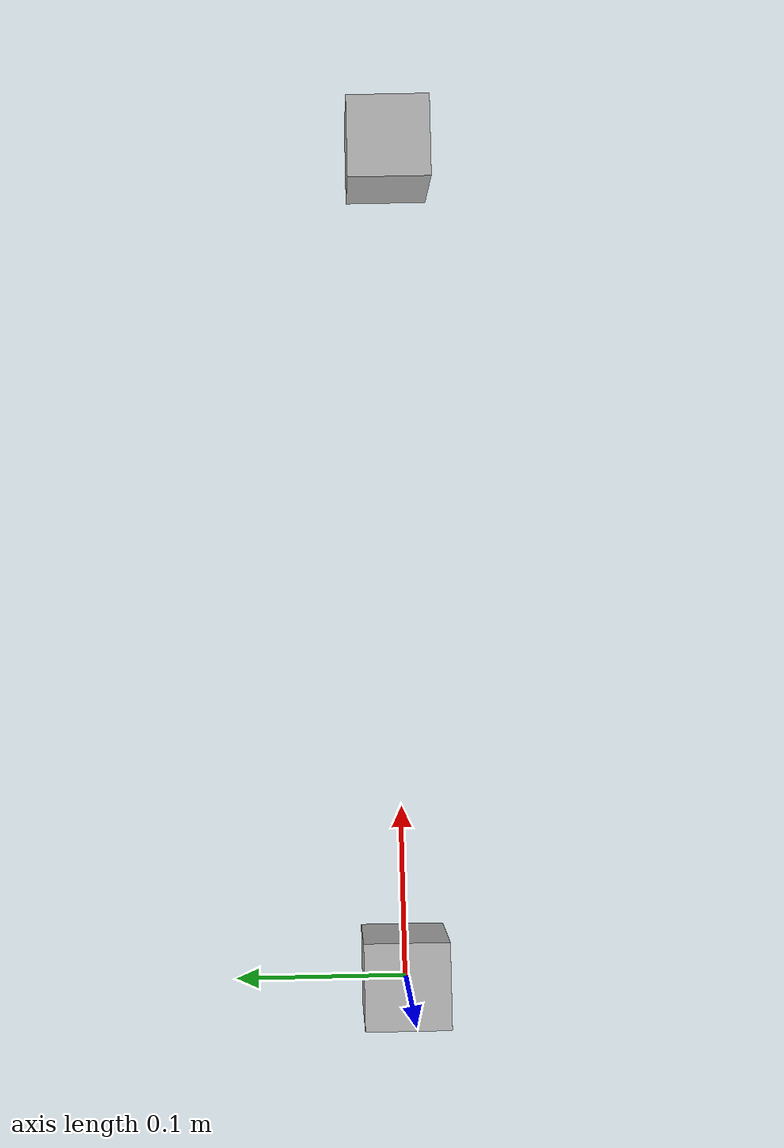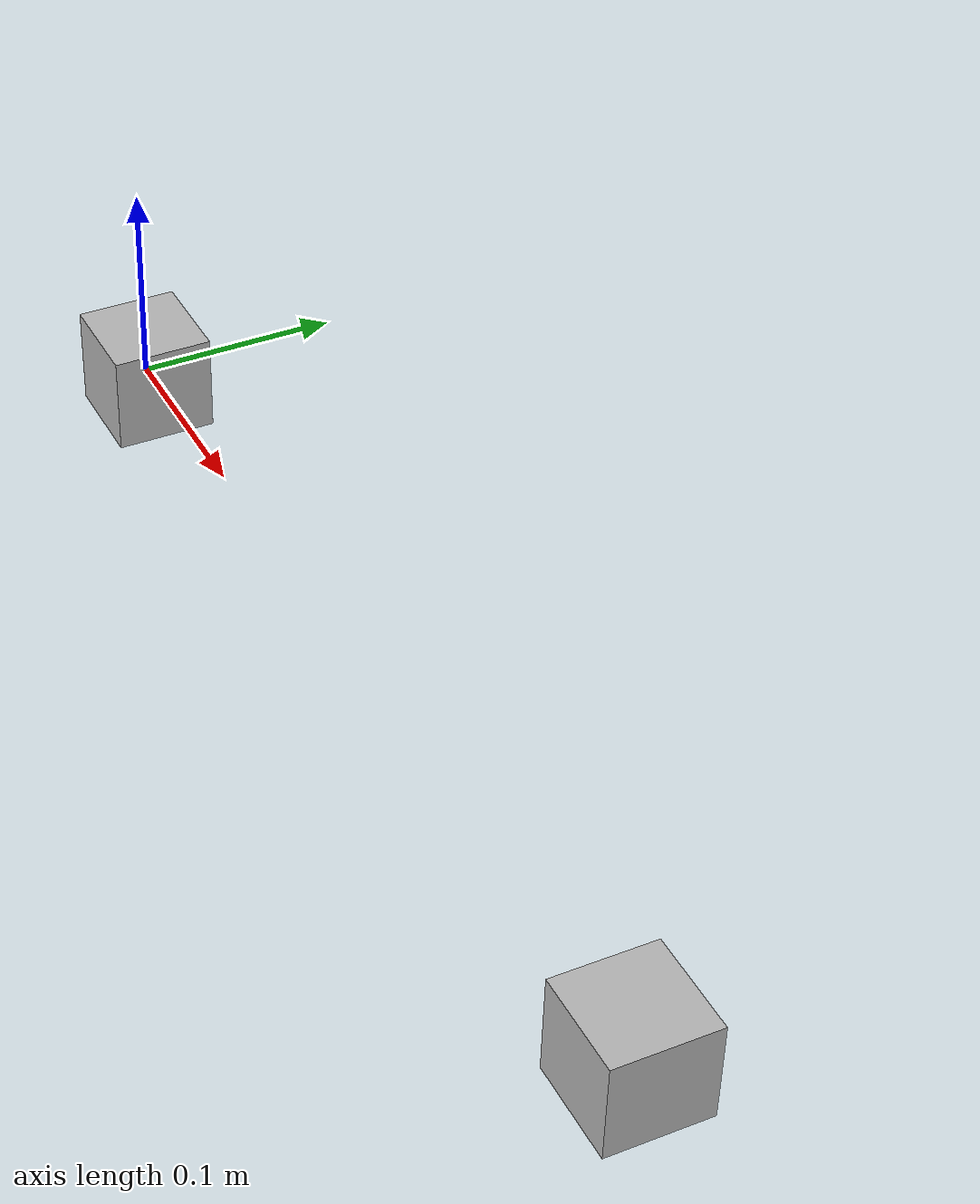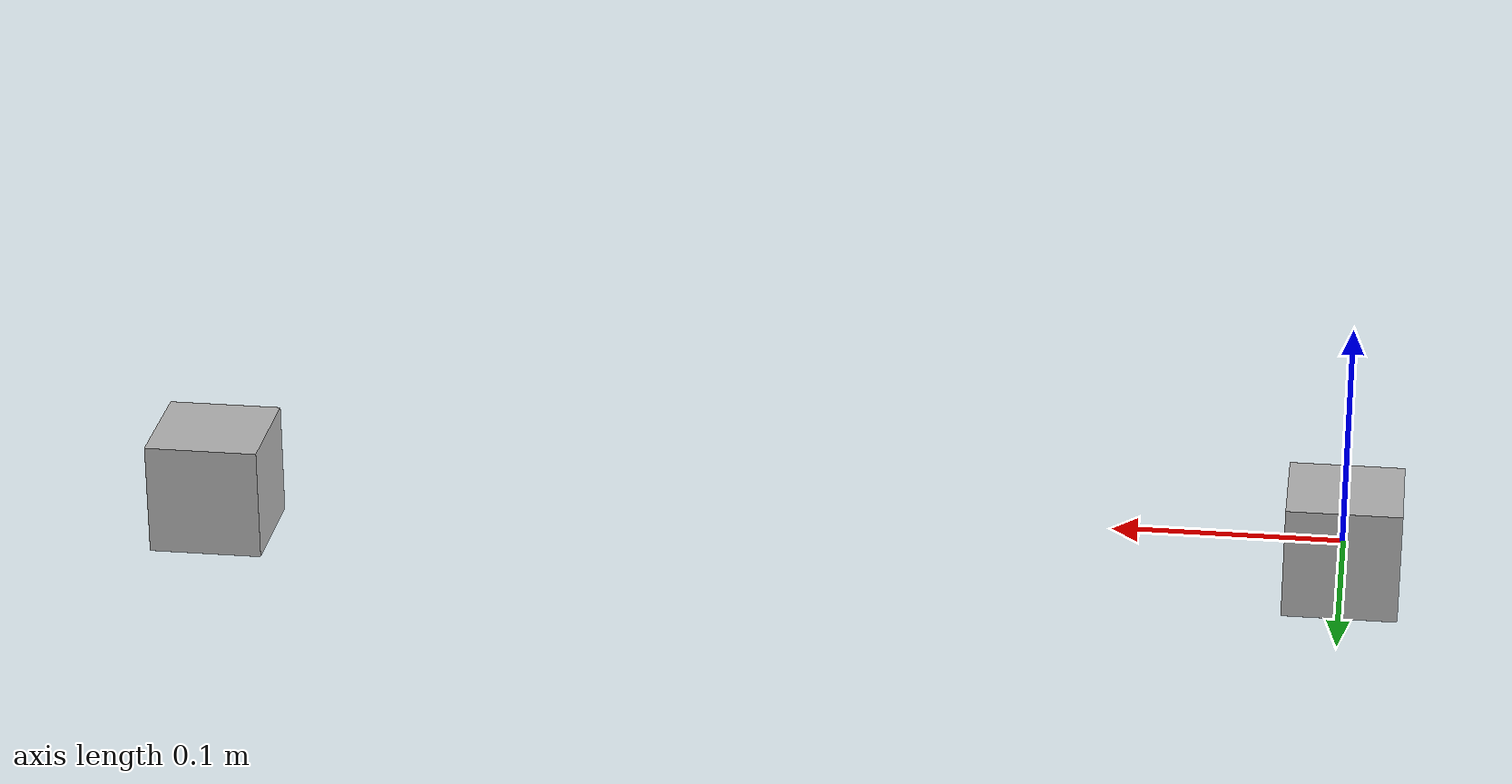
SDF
<sdf version="1.4">
  <world name="world_1">
    <scene>
      <ambient>0.5 0.5 0.5 1.0</ambient>
      <background>0.5 0.5 0.5 1.0</background>
      <shadows>true</shadows>
      <fog>
        <color>0.0 0.0 0.5 0.5</color>
        <type>linear</type>
        <start>2.0</start>
        <end>10.0</end>
        <density>0.5</density>
      </fog>
    </scene>
    <physics type="ode">
      <max_contacts>250</max_contacts>
      <ode>
        <solver>
          <type>quick</type>
          <iters>20</iters>
          <sor>1.3</sor>
        </solver>
        <constraints>
          <cfm>0</cfm>
          <erp>0.2</erp>
          <contact_max_correcting_vel>100.0</contact_max_correcting_vel>
          <contact_surface_layer>0.0</contact_surface_layer>
        </constraints>
      </ode>
      <gravity>0.0000 0 0</gravity>
      <max_step_size>0.001</max_step_size>
    </physics>
    <model name="model_1">
      <pose>0.0 0.0 0.0 0.0 0.0 0.0</pose>
      <link name="link_1">
        <pose>0.0 0.0 0.0 0.0 0.0 0.0</pose>
        <visual name="visual_box">
          <pose>0.0 0.0 0.0 0.0 0.0 0.0</pose>
          <geometry>
            <box>
              <size>0.05 0.05 0.05</size>
            </box>
          </geometry>
          <cast_shadows>true</cast_shadows>
          <laser_retro>100.0</laser_retro>
        </visual>
        <collision name="collision_box">
          <pose>0.0 0.0 0.0 0.0 0.0 0.0</pose>
          <max_contacts>250</max_contacts>
          <geometry>
            <box>
              <size>0.05 0.05 0.05</size>
            </box>
          </geometry>
          <surface>
            <friction>
              <ode>
                <mu>0.5</mu>
                <mu2>0.2</mu2>
                <fdir1>1.0 0 0</fdir1>
                <slip1>0</slip1>
                <slip2>0</slip2>
              </ode>
            </friction>
            <bounce>
              <restitution_coefficient>0</restitution_coefficient>
              <threshold>1000000.0</threshold>
            </bounce>
            <contact>
              <ode>
                <soft_cfm>0</soft_cfm>
                <soft_erp>0.2</soft_erp>
                <kp>1e15</kp>
                <kd>1e13</kd>
                <max_vel>100.0</max_vel>
                <min_depth>0.0001</min_depth>
              </ode>
            </contact>
          </surface>
          <laser_retro>100.0</laser_retro>
        </collision>
        <sensor type="ray" name="sonar">
          <pose>0.25 0 0 0 0 0</pose>
          <update_rate>5</update_rate>
          <ray>
            <scan>
              <horizontal>
                <samples>5</samples>
                <resolution>1.0</resolution>
                <min_angle>-0.25</min_angle>
                <max_angle>0.25</max_angle>
              </horizontal>
              <vertical>
                <samples>5</samples>
                <resolution>1</resolution>
                <min_angle>-0.25</min_angle>
                <max_angle>0.25</max_angle>
              </vertical>
            </scan>
            <range>
              <min>0.01</min>
              <max>0.75</max>
              <resolution>0.01</resolution>
            </range>
          </ray>
          <plugin filename="libgazebo_ros_range.so" name="gazebo_ros_range">
            <!-- The unit test depends on the range value being within bounds,
                 so any noise means the test might get unlucky and fail-->
            <gaussianNoise>0.001</gaussianNoise>
            <alwaysOn>true</alwaysOn>
            <updateRate>5</updateRate>
            <topicName>sonar</topicName>
            <frameName>sonar_link</frameName>
            <fov>0.5</fov>
            <radiation>ultrasound</radiation>
          </plugin>
        </sensor>
        <gravity>false</gravity>
        <self_collide>true</self_collide>
        <kinematic>false</kinematic>
      </link>
      <static>false</static>
    </model>

    <model name="model_2">
      <pose>0.5 0.0 0.0 0.0 0.0 0.0</pose>
      <link name="link_2">
        <pose>0.0 0.0 0.0 0.0 0.0 0.0</pose>
        <visual name="visual_box2">
          <pose>0.0 0.0 0.0 0.0 0.0 0.0</pose>
          <geometry>
            <box>
              <size>0.05 0.05 0.05</size>
            </box>
          </geometry>
          <cast_shadows>true</cast_shadows>
          <laser_retro>100.0</laser_retro>
        </visual>
        <collision name="collision_box2">
          <pose>0.0 0.0 0.0 0.0 0.0 0.0</pose>
          <max_contacts>250</max_contacts>
          <geometry>
            <box>
              <size>0.05 0.05 0.05</size>
            </box>
          </geometry>
          <surface>
            <friction>
              <ode>
                <mu>0.5</mu>
                <mu2>0.2</mu2>
                <fdir1>1.0 0 0</fdir1>
                <slip1>0</slip1>
                <slip2>0</slip2>
              </ode>
            </friction>
            <bounce>
              <restitution_coefficient>0</restitution_coefficient>
              <threshold>1000000.0</threshold>
            </bounce>
            <contact>
              <ode>
                <soft_cfm>0</soft_cfm>
                <soft_erp>0.2</soft_erp>
                <kp>1e15</kp>
                <kd>1e13</kd>
                <max_vel>100.0</max_vel>
                <min_depth>0.0001</min_depth>
              </ode>
            </contact>
          </surface>
          <laser_retro>100.0</laser_retro>
        </collision>
        <sensor type="ray" name="sonar2">
          <pose>0.25 0 0 0 0 0</pose>
          <update_rate>5</update_rate>
          <ray>
            <scan>
              <horizontal>
                <samples>5</samples>
                <resolution>1.0</resolution>
                <min_angle>-0.25</min_angle>
                <max_angle>0.25</max_angle>
              </horizontal>
              <vertical>
                <samples>5</samples>
                <resolution>1</resolution>
                <min_angle>-0.25</min_angle>
                <max_angle>0.25</max_angle>
              </vertical>
            </scan>
            <range>
              <min>0.01</min>
              <max>0.75</max>
              <resolution>0.01</resolution>
            </range>
          </ray>
          <plugin filename="libgazebo_ros_range.so" name="gazebo_ros_range2">
            <gaussianNoise>0.005</gaussianNoise>
            <alwaysOn>true</alwaysOn>
            <updateRate>5</updateRate>
            <topicName>sonar2</topicName>
            <frameName>sonar_link2</frameName>
            <fov>0.5</fov>
            <radiation>ultrasound</radiation>
          </plugin>
        </sensor>
        <gravity>false</gravity>
        <self_collide>true</self_collide>
        <kinematic>false</kinematic>
      </link>
      <static>false</static>
    </model>

    <light type="point" name="light_1">
      <pose>0.0 0.0 10.0 0.0 0.0 0.0</pose>
      <diffuse>0.5 0.5 0.5 0.5</diffuse>
      <attenuation>
        <range>1000.0</range>
        <constant>0.01</constant>
        <quadratic>0.0001</quadratic>
      </attenuation>
      <direction>0 0 -1</direction>
      <spot>
        <inner_angle>1.57</inner_angle>
        <outer_angle>1.57</outer_angle>
        <falloff>1.0</falloff>
      </spot>
      <cast_shadows>true</cast_shadows>
    </light>

  </world>
</sdf>
